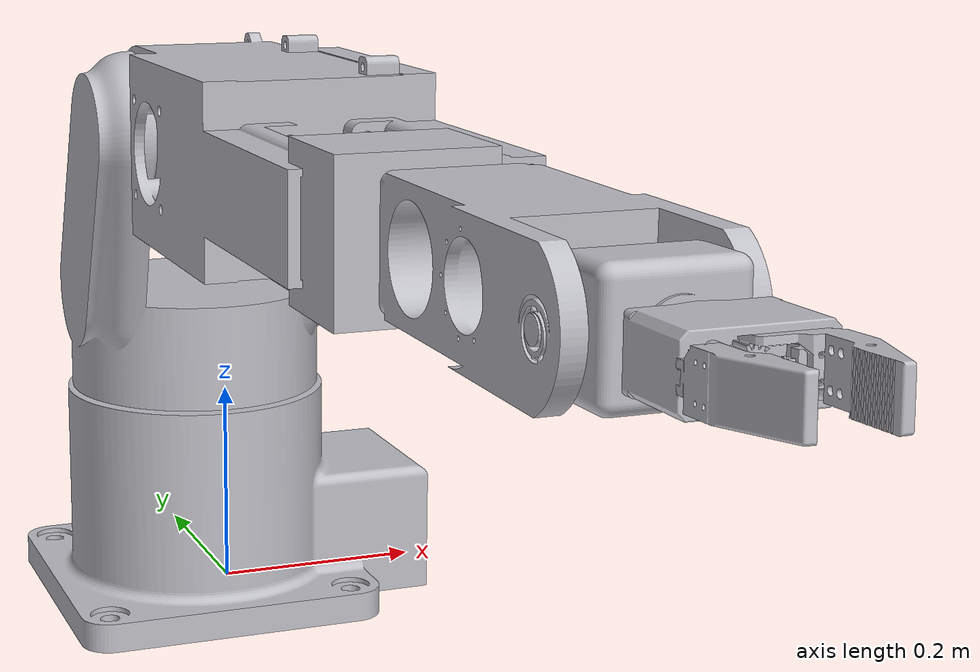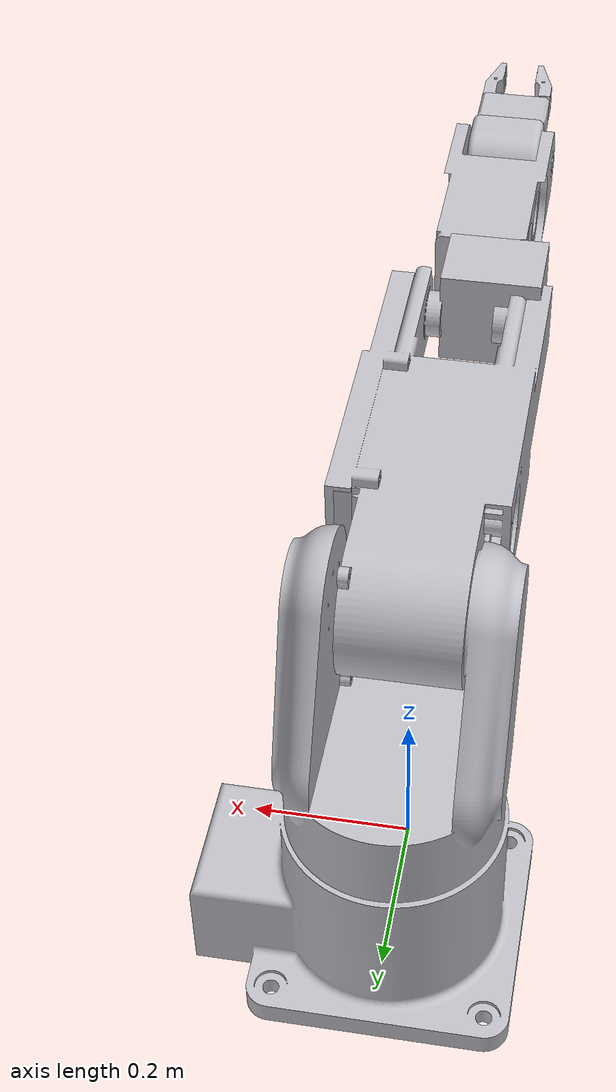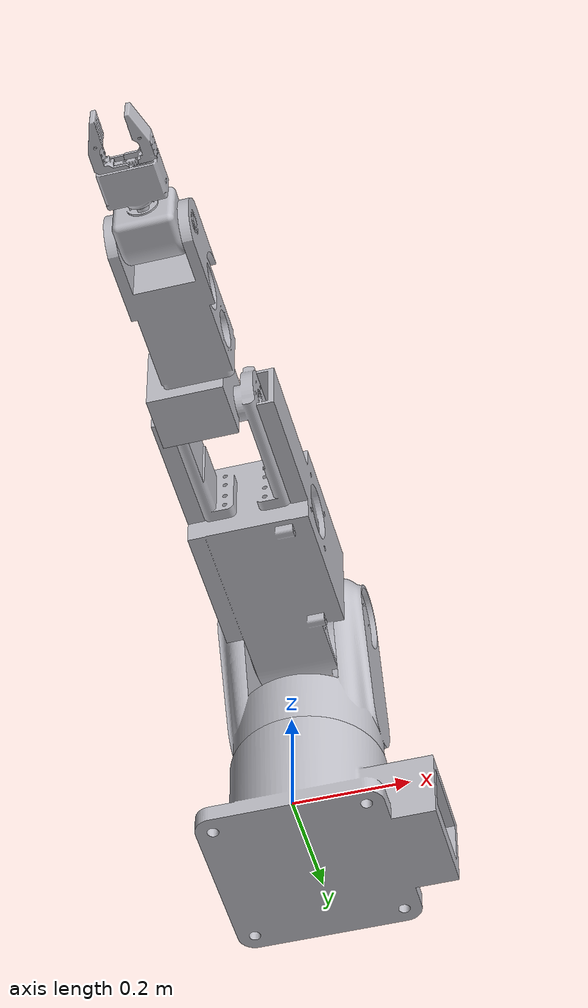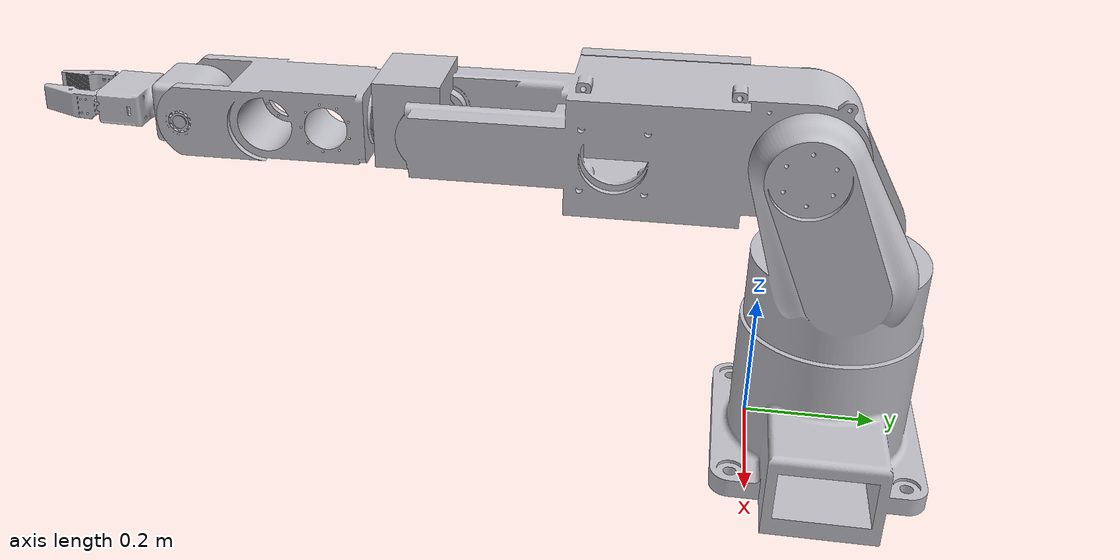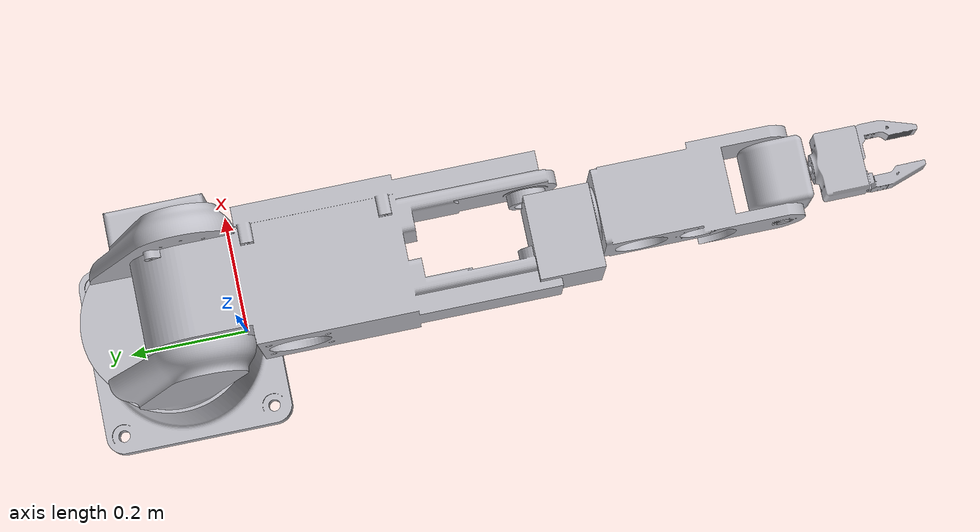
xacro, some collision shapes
<?xml version="1.0" ?>
<robot name="robot_arm" xmlns:xacro="http://www.ros.org/wiki/xacro">
  <xacro:include filename="$(find robot_arm_description)/urdf/robot_arm.xacro" />
</robot>

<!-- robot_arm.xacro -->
<robot name="robot_arm" xmlns:xacro="http://www.ros.org/wiki/xacro">

<xacro:arg name="use_ros2_control" default="true" />
<xacro:arg name="use_native_control" default="false" />
<xacro:arg name="enable_game_assets" default="false" />
<xacro:arg name="standalone_arm" default="false" />
<!-- Mobile arena only: spawn directly on the deterministic table-clearing
     MoveIt branch. Standalone/upstream profiles retain their ready pose. -->
<xacro:arg name="mobile_case_initial" default="false" />
<xacro:include filename="$(find robot_arm_description)/urdf/materials.xacro" />
<xacro:include filename="$(find robot_arm_description)/urdf/robot_arm.ros2control" />
<xacro:include filename="$(find robot_arm_description)/urdf/robot_arm.gazebo" />
<xacro:if value="$(arg standalone_arm)">
  <link name="world"/>
  <joint name="world_to_arm_base" type="fixed">
    <parent link="world"/>
    <child link="arm_base_link"/>
    <origin xyz="0 0 0" rpy="0 0 0"/>
  </joint>
</xacro:if>

<link name="arm_base_link">
  <inertial>
    <origin xyz="0.014712625665330324 0.1104030365171965 0.045126245432456004" rpy="0 0 0"/>
    <mass value="1.346391"/>
    <inertia ixx="0.015764883" iyy="0.019490568" izz="0.022143950" ixy="-0.000000000" iyz="-0.000000000" ixz="0.000497100"/>
  </inertial>
  <visual>
    <origin xyz="0 0 0" rpy="0 0 0"/>
    <geometry>
      <mesh filename="file://$(find robot_arm_description)/meshes/base_link.stl" scale="0.001 0.001 0.001"/>
    </geometry>
    <material name="silver"/>
  </visual>
  <collision>
    <origin xyz="0 0.11 0.09" rpy="0 0 0"/>
    <geometry><cylinder radius="0.16" length="0.18"/></geometry>
  </collision>
</link>

<link name="shoulder_link_v2_1">
  <inertial>
    <origin xyz="-0.00035045456964973747 -0.013538062073570417 0.10281772471825718" rpy="0 0 0"/>
    <mass value="1.306891"/>
    <inertia ixx="0.016597600" iyy="0.019874750" izz="0.013551083" ixy="-0.000025850" iyz="0.002596482" ixz="0.000078850"/>
  </inertial>
  <visual>
    <origin xyz="0.0 -0.110403 -0.184597" rpy="0 0 0"/>
    <geometry>
      <mesh filename="file://$(find robot_arm_description)/meshes/shoulder_link_v2_1.stl" scale="0.001 0.001 0.001"/>
    </geometry>
    <material name="silver"/>
  </visual>
  <collision>
    <origin xyz="-0.047 -0.035 0.135" rpy="0 0 0"/>
    <geometry><box size="0.22 0.20 0.24"/></geometry>
  </collision>
</link>

<link name="upper_arm_link_v2_1">
  <inertial>
    <origin xyz="0.0860771295035334 -0.19746164423610849 -1.0453582749314627e-05" rpy="0 0 0"/>
    <mass value="0.888269"/>
    <inertia ixx="0.030127082" iyy="0.005919182" izz="0.031455283" ixy="0.001406950" iyz="-0.000000968" ixz="0.000000918"/>
  </inertial>
  <visual>
    <origin xyz="0.095 -0.040403 -0.459597" rpy="0 0 0"/>
    <geometry>
      <mesh filename="file://$(find robot_arm_description)/meshes/upper_arm_link_v2_1.stl" scale="0.001 0.001 0.001"/>
    </geometry>
    <material name="silver"/>
  </visual>
  <collision>
    <origin xyz="0.020 -0.262 0" rpy="0 0 0"/>
    <geometry><box size="0.13 0.45 0.13"/></geometry>
  </collision>
</link>

<link name="elbow_link_v2_1">
  <inertial>
    <origin xyz="0.052902702338458216 -0.025659794753081833 -0.00021904281386853075" rpy="0 0 0"/>
    <mass value="0.119430"/>
    <inertia ixx="0.000407768" iyy="0.000297132" izz="0.000394317" ixy="0.000000367" iyz="-0.000000918" ixz="0.000000000"/>
  </inertial>
  <visual>
    <origin xyz="0.054 0.484597 -0.459597" rpy="0 0 0"/>
    <geometry>
      <mesh filename="file://$(find robot_arm_description)/meshes/elbow_link_v2_1.stl" scale="0.001 0.001 0.001"/>
    </geometry>
    <material name="silver"/>
  </visual>
  <collision>
    <origin xyz="0.026 -0.041 0" rpy="0 0 0"/>
    <geometry><box size="0.13 0.10 0.13"/></geometry>
  </collision>
</link>

<link name="lower_link_v2_1">
  <inertial>
    <origin xyz="3.585542470080057e-05 -0.14132389998535622 -4.115182214436963e-07" rpy="0 0 0"/>
    <mass value="0.230197"/>
    <inertia ixx="0.002054683" iyy="0.000702300" izz="0.002163800" ixy="-0.000011800" iyz="-0.000000018" ixz="-0.000000000"/>
  </inertial>
  <visual>
    <origin xyz="0.001 0.567597 -0.459597" rpy="0 0 0"/>
    <geometry>
      <mesh filename="file://$(find robot_arm_description)/meshes/lower_link_v2_1.stl" scale="0.001 0.001 0.001"/>
    </geometry>
    <material name="silver"/>
  </visual>
  <collision>
    <origin xyz="-0.026 -0.145 0" rpy="0 0 0"/>
    <geometry><box size="0.11 0.24 0.11"/></geometry>
  </collision>
</link>

<link name="wrist_link_v1_1">
  <inertial>
    <origin xyz="0.05107201270944397 -0.011906080047413892 0.00027679513001566125" rpy="0 0 0"/>
    <mass value="0.056296"/>
    <inertia ixx="0.000073483" iyy="0.000101617" izz="0.000108383" ixy="0.000000100" iyz="0.000000150" ixz="-0.000000000"/>
  </inertial>
  <visual>
    <origin xyz="0.053 0.858597 -0.459597" rpy="0 0 0"/>
    <geometry>
      <mesh filename="file://$(find robot_arm_description)/meshes/wrist_link_v1_1.stl" scale="0.001 0.001 0.001"/>
    </geometry>
    <material name="silver"/>
  </visual>
  <collision>
    <origin xyz="0.025 -0.025 0" rpy="0 0 0"/>
    <geometry><box size="0.11 0.08 0.09"/></geometry>
  </collision>
</link>

<link name="gripper_link_v2_1">
  <inertial>
    <origin xyz="-0.0010660299218875268 -0.04308680250375296 0.0009958827106185675" rpy="0 0 0"/>
    <mass value="0.024621"/>
    <inertia ixx="0.000017783" iyy="0.000027882" izz="0.000033467" ixy="0.000000018" iyz="0.000000133" ixz="-0.000000000"/>
  </inertial>
  <visual>
    <origin xyz="0.0018 0.909535 -0.460781" rpy="0 0 0"/>
    <geometry>
      <mesh filename="file://$(find robot_arm_description)/meshes/gripper_link_v2_1.stl" scale="0.001 0.001 0.001"/>
    </geometry>
    <material name="silver"/>
  </visual>
  <collision>
    <origin xyz="0 -0.0375 0.0045" rpy="0 0 0"/>
    <geometry>
      <box size="0.100 0.075 0.045"/>
    </geometry>
  </collision>
</link>

<link name="grasp_frame"/>
<joint name="gripper_to_grasp_frame" type="fixed">
  <parent link="gripper_link_v2_1"/>
  <child link="grasp_frame"/>
  <origin xyz="0 -0.124 0.005" rpy="0 0 0"/>
</joint>

<xacro:if value="$(arg enable_game_assets)">
<link name="held_core_visual_link">
  <inertial>
    <mass value="0.01"/>
    <origin xyz="0 0 0" rpy="0 0 0"/>
    <inertia ixx="0.00001" iyy="0.00001" izz="0.00001"
             ixy="0" ixz="0" iyz="0"/>
  </inertial>
  <visual name="held_energy_cell">
    <origin xyz="0 0 0" rpy="0 0 0"/>
    <geometry><box size="0.05 0.12 0.07"/></geometry>
    <material name="held_core_blue">
      <color rgba="0.04 0.78 1.0 1.0"/>
    </material>
  </visual>
</link>
<joint name="held_core_visibility_joint" type="prismatic">
  <parent link="grasp_frame"/>
  <child link="held_core_visual_link"/>
  <origin xyz="0 0 -1.5" rpy="0 0 0"/>
  <axis xyz="0 0 1"/>
  <limit lower="0.0" upper="1.6" effort="4" velocity="20.0"/>
  <dynamics damping="0.1" friction="0.0"/>
</joint>
</xacro:if>

<link name="jaw_one_v1_1">
  <inertial>
    <origin xyz="-0.01527629607958246 -0.036016115673927374 0.008044608205367287" rpy="0 0 0"/>
    <mass value="0.008454"/>
    <inertia ixx="0.000007550" iyy="0.000001732" izz="0.000007283" ixy="0.000000018" iyz="-0.000000367" ixz="0.000000200"/>
  </inertial>
  <visual>
    <origin xyz="-0.0482 0.997104 -0.458817" rpy="0 0 0"/>
    <geometry>
      <mesh filename="file://$(find robot_arm_description)/meshes/jaw_one_v1_1.stl" scale="0.001 0.001 0.001"/>
    </geometry>
    <material name="silver"/>
  </visual>
  <collision name="jaw_one_inner_contact_collision">
    <origin xyz="-0.023 -0.043 0.0065" rpy="0 0 0"/>
    <geometry><box size="0.006 0.070 0.042"/></geometry>
  </collision>
</link>

<link name="jaw_two_v1_1">
  <inertial>
    <origin xyz="0.015274559603405395 -0.03618933785615064 0.004635449770394873" rpy="0 0 0"/>
    <mass value="0.008454"/>
    <inertia ixx="0.000007550" iyy="0.000001867" izz="0.000007168" ixy="0.000000000" iyz="0.000000918" ixz="0.000000200"/>
  </inertial>
  <visual>
    <origin xyz="0.0518 0.997104 -0.458817" rpy="0 0 0"/>
    <geometry>
      <mesh filename="file://$(find robot_arm_description)/meshes/jaw_two_v1_1.stl" scale="0.001 0.001 0.001"/>
    </geometry>
    <material name="silver"/>
  </visual>
  <collision name="jaw_two_inner_contact_collision">
    <origin xyz="0.023 -0.043 0.0065" rpy="0 0 0"/>
    <geometry><box size="0.006 0.070 0.042"/></geometry>
  </collision>
</link>

<joint name="revolute_1" type="revolute">
  <origin xyz="0.0 0.110403 0.184597" rpy="0 0 0"/>
  <parent link="arm_base_link"/>
  <child link="shoulder_link_v2_1"/>
  <axis xyz="0.0 -0.0 1.0"/>
  <xacro:if value="$(arg use_native_control)">
    <limit lower="1.45" upper="1.69" effort="100" velocity="1.2"/>
  </xacro:if>
  <xacro:unless value="$(arg use_native_control)">
    <limit lower="-3.14159" upper="3.14159" effort="100" velocity="3.0"/>
  </xacro:unless>
  <dynamics damping="0.5" friction="0.0"/>
</joint>

<xacro:if value="$(arg use_native_control)">
  <joint name="revolute_2" type="continuous">
    <origin xyz="-0.095 -0.07 0.275" rpy="0 0 0"/>
    <parent link="shoulder_link_v2_1"/>
    <child link="upper_arm_link_v2_1"/>
    <axis xyz="1.0 -0.0 0.0"/>
    <!-- Festival control is continuous: contact with the chassis, arm or
         floor is the physical motion stop. -->
    <limit effort="180" velocity="1.4"/>
    <dynamics damping="0.5" friction="0.0"/>
  </joint>

  <joint name="revolute_3" type="continuous">
    <origin xyz="0.041 -0.525 0.0" rpy="0 0 0"/>
    <parent link="upper_arm_link_v2_1"/>
    <child link="elbow_link_v2_1"/>
    <axis xyz="1.0 -0.0 0.0"/>
    <limit effort="100" velocity="1.4"/>
    <dynamics damping="0.5" friction="0.0"/>
  </joint>
</xacro:if>

<xacro:unless value="$(arg use_native_control)">
  <!-- These definitions intentionally match the validated upstream MoveIt
       model.  They are bounded revolute joints, not the festival's continuous
       manual-control joints. -->
  <joint name="revolute_2" type="revolute">
    <origin xyz="-0.095 -0.07 0.275" rpy="0 0 0"/>
    <parent link="shoulder_link_v2_1"/>
    <child link="upper_arm_link_v2_1"/>
    <axis xyz="1.0 -0.0 0.0"/>
    <limit lower="-3.14159" upper="3.14159" effort="100" velocity="3.0"/>
    <dynamics damping="0.5" friction="0.0"/>
  </joint>

  <joint name="revolute_3" type="revolute">
    <origin xyz="0.041 -0.525 0.0" rpy="0 0 0"/>
    <parent link="upper_arm_link_v2_1"/>
    <child link="elbow_link_v2_1"/>
    <axis xyz="1.0 -0.0 0.0"/>
    <limit lower="-3.14159" upper="3.14159" effort="100" velocity="3.0"/>
    <dynamics damping="0.5" friction="0.0"/>
  </joint>
</xacro:unless>

<joint name="revolute_4" type="revolute">
  <origin xyz="0.053 -0.083 0.0" rpy="0 0 0"/>
  <parent link="elbow_link_v2_1"/>
  <child link="lower_link_v2_1"/>
  <axis xyz="-0.0 -1.0 -0.0"/>
  <xacro:if value="$(arg use_native_control)">
    <limit lower="-0.25" upper="0.25" effort="40" velocity="1.0"/>
  </xacro:if>
  <xacro:unless value="$(arg use_native_control)">
    <limit lower="-3.14159" upper="3.14159" effort="100" velocity="3.0"/>
  </xacro:unless>
  <dynamics damping="0.5" friction="0.0"/>
</joint>

<joint name="revolute_5" type="revolute">
  <origin xyz="-0.052 -0.291 0.0" rpy="0 0 0"/>
  <parent link="lower_link_v2_1"/>
  <child link="wrist_link_v1_1"/>
  <axis xyz="1.0 0.0 0.0"/>
  <xacro:if value="$(arg use_native_control)">
    <limit lower="-2.12" upper="-0.70" effort="40" velocity="1.2"/>
  </xacro:if>
  <xacro:unless value="$(arg use_native_control)">
    <limit lower="-3.14159" upper="3.14159" effort="100" velocity="3.0"/>
  </xacro:unless>
  <dynamics damping="0.5" friction="0.0"/>
</joint>

<joint name="revolute_6" type="revolute">
  <origin xyz="0.0512 -0.050938 0.001184" rpy="0 0 0"/>
  <parent link="wrist_link_v1_1"/>
  <child link="gripper_link_v2_1"/>
  <axis xyz="0.0 -0.99973 0.023249"/>
  <xacro:if value="$(arg use_native_control)">
    <limit lower="-1.15" upper="1.15" effort="30" velocity="1.2"/>
  </xacro:if>
  <xacro:unless value="$(arg use_native_control)">
    <limit lower="-3.30" upper="3.30" effort="100" velocity="3.0"/>
  </xacro:unless>
  <dynamics damping="0.5" friction="0.0"/>
</joint>

<joint name="slider_7" type="prismatic">
  <origin xyz="0.05 -0.087569 -0.001964" rpy="0 0 0"/>
  <parent link="gripper_link_v2_1"/>
  <child link="jaw_one_v1_1"/>
  <axis xyz="1.0 0.0 -0.0"/>
  <!-- Positive X moves jaw one outwards. -->
  <limit lower="-0.001" upper="0.055" effort="100" velocity="0.08"/>
  <dynamics damping="2.0" friction="0.02"/>
</joint>

<joint name="slider_8" type="prismatic">
  <origin xyz="-0.05 -0.087569 -0.001964" rpy="0 0 0"/>
  <parent link="gripper_link_v2_1"/>
  <child link="jaw_two_v1_1"/>
  <axis xyz="1.0 0.0 -0.0"/>
  <!-- Negative X moves jaw two outwards. -->
  <limit lower="-0.055" upper="0.001" effort="100" velocity="0.08"/>
  <dynamics damping="2.0" friction="0.02"/>
</joint>

</robot>
